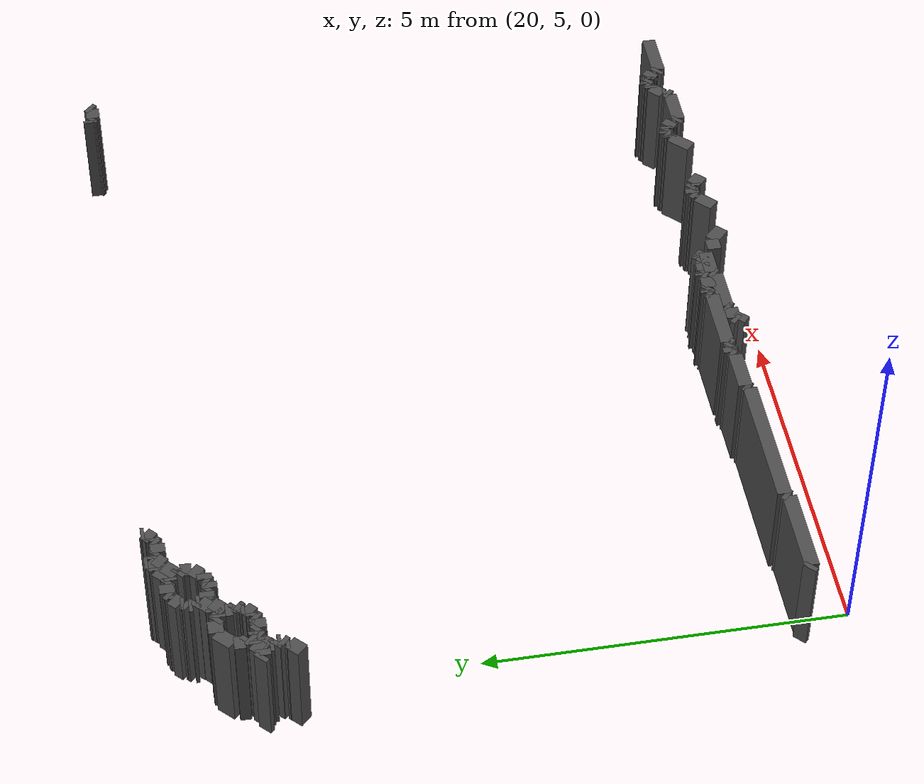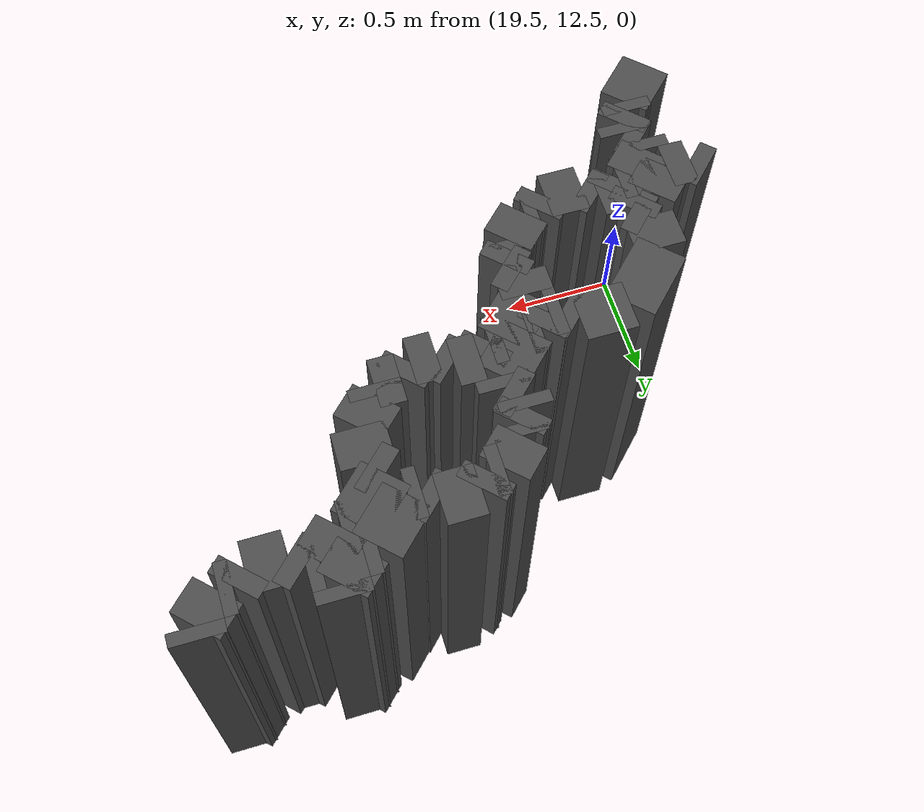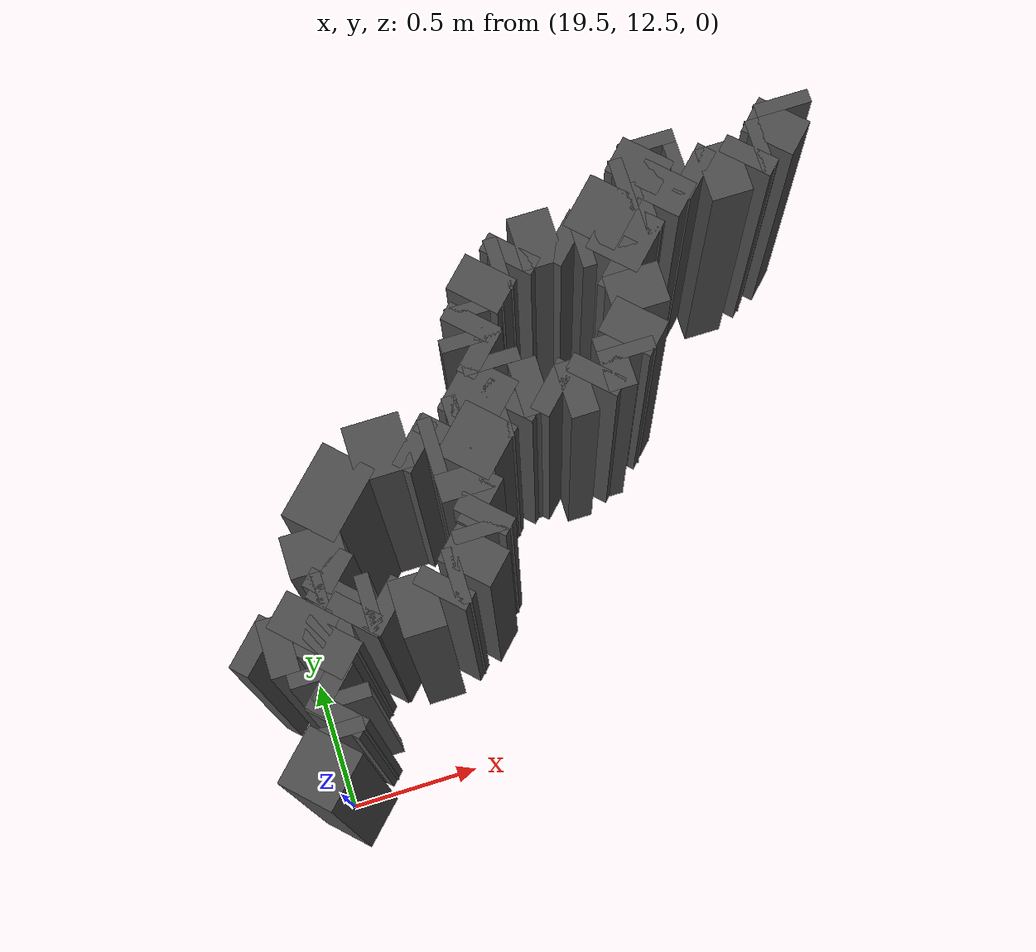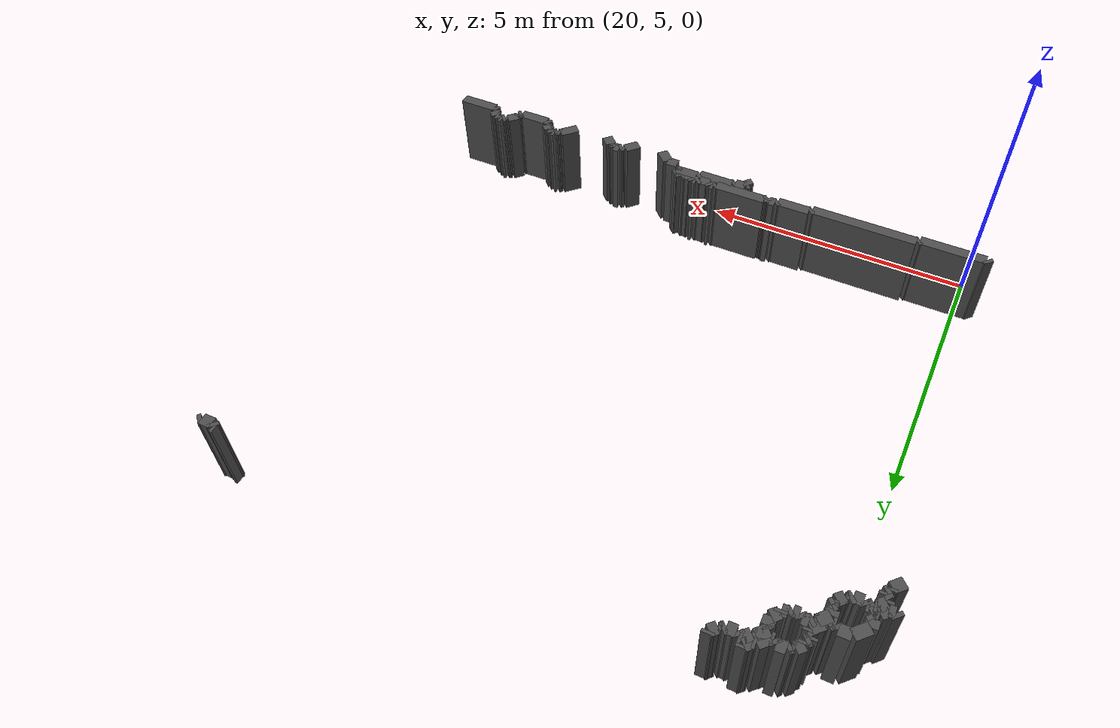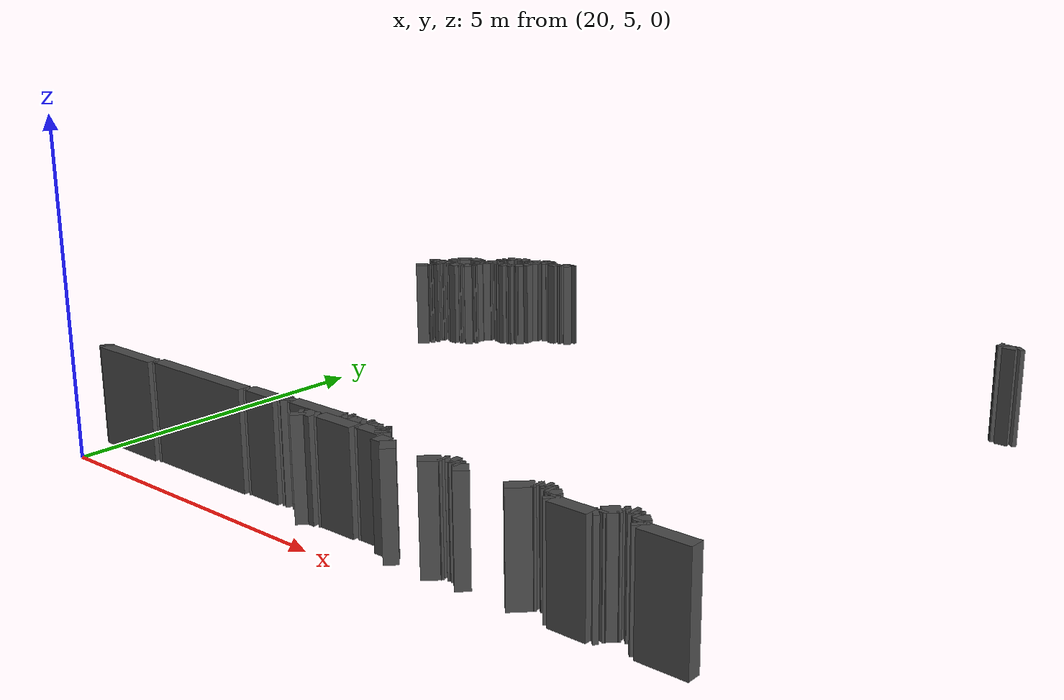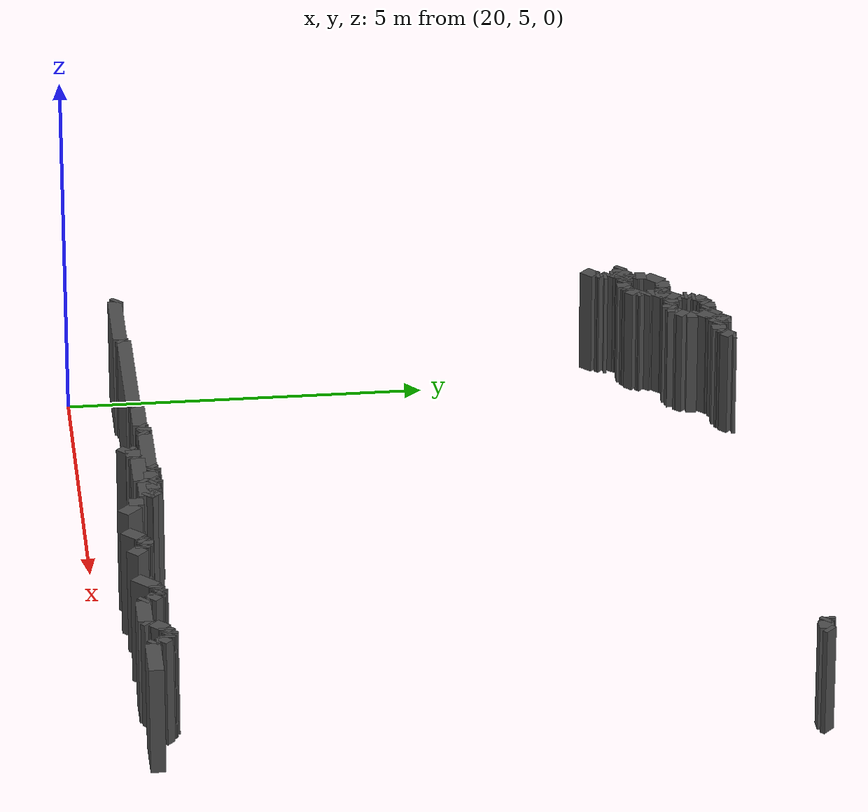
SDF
<sdf version="1.9">
 <model name="generated_walls">
  <static>true</static>
  <link name="wall_161_1274">
   <pose>19.725 5.725 0.75 0 0 -0.785</pose>
   <collision name="collision"><geometry><box><size>0.071 0.2 1.5</size></box></geometry></collision>
   <visual name="visual">
    <geometry><box><size>0.071 0.2 1.5</size></box></geometry>
    <material><ambient>0.3 0.3 0.3 1</ambient></material>
   </visual>
  </link>
  <link name="wall_161_1275">
   <pose>20.350 5.700 0.75 0 0 0.000</pose>
   <collision name="collision"><geometry><box><size>1.200 0.2 1.5</size></box></geometry></collision>
   <visual name="visual">
    <geometry><box><size>1.200 0.2 1.5</size></box></geometry>
    <material><ambient>0.3 0.3 0.3 1</ambient></material>
   </visual>
  </link>
  <link name="wall_161_1276">
   <pose>20.975 5.725 0.75 0 0 0.785</pose>
   <collision name="collision"><geometry><box><size>0.071 0.2 1.5</size></box></geometry></collision>
   <visual name="visual">
    <geometry><box><size>0.071 0.2 1.5</size></box></geometry>
    <material><ambient>0.3 0.3 0.3 1</ambient></material>
   </visual>
  </link>
  <link name="wall_161_1277">
   <pose>21.975 5.750 0.75 0 0 0.000</pose>
   <collision name="collision"><geometry><box><size>1.950 0.2 1.5</size></box></geometry></collision>
   <visual name="visual">
    <geometry><box><size>1.950 0.2 1.5</size></box></geometry>
    <material><ambient>0.3 0.3 0.3 1</ambient></material>
   </visual>
  </link>
  <link name="wall_161_1278">
   <pose>22.975 5.775 0.75 0 0 0.785</pose>
   <collision name="collision"><geometry><box><size>0.071 0.2 1.5</size></box></geometry></collision>
   <visual name="visual">
    <geometry><box><size>0.071 0.2 1.5</size></box></geometry>
    <material><ambient>0.3 0.3 0.3 1</ambient></material>
   </visual>
  </link>
  <link name="wall_161_1279">
   <pose>23.300 5.800 0.75 0 0 0.000</pose>
   <collision name="collision"><geometry><box><size>0.600 0.2 1.5</size></box></geometry></collision>
   <visual name="visual">
    <geometry><box><size>0.600 0.2 1.5</size></box></geometry>
    <material><ambient>0.3 0.3 0.3 1</ambient></material>
   </visual>
  </link>
  <link name="wall_161_1280">
   <pose>23.625 5.825 0.75 0 0 0.785</pose>
   <collision name="collision"><geometry><box><size>0.071 0.2 1.5</size></box></geometry></collision>
   <visual name="visual">
    <geometry><box><size>0.071 0.2 1.5</size></box></geometry>
    <material><ambient>0.3 0.3 0.3 1</ambient></material>
   </visual>
  </link>
  <link name="wall_161_1281">
   <pose>23.700 5.850 0.75 0 0 0.000</pose>
   <collision name="collision"><geometry><box><size>0.100 0.2 1.5</size></box></geometry></collision>
   <visual name="visual">
    <geometry><box><size>0.100 0.2 1.5</size></box></geometry>
    <material><ambient>0.3 0.3 0.3 1</ambient></material>
   </visual>
  </link>
  <link name="wall_161_1282">
   <pose>23.775 5.825 0.75 0 0 -0.785</pose>
   <collision name="collision"><geometry><box><size>0.071 0.2 1.5</size></box></geometry></collision>
   <visual name="visual">
    <geometry><box><size>0.071 0.2 1.5</size></box></geometry>
    <material><ambient>0.3 0.3 0.3 1</ambient></material>
   </visual>
  </link>
  <link name="wall_161_1283">
   <pose>23.825 5.825 0.75 0 0 0.785</pose>
   <collision name="collision"><geometry><box><size>0.071 0.2 1.5</size></box></geometry></collision>
   <visual name="visual">
    <geometry><box><size>0.071 0.2 1.5</size></box></geometry>
    <material><ambient>0.3 0.3 0.3 1</ambient></material>
   </visual>
  </link>
  <link name="wall_161_1284">
   <pose>24.325 5.850 0.75 0 0 0.000</pose>
   <collision name="collision"><geometry><box><size>0.950 0.2 1.5</size></box></geometry></collision>
   <visual name="visual">
    <geometry><box><size>0.950 0.2 1.5</size></box></geometry>
    <material><ambient>0.3 0.3 0.3 1</ambient></material>
   </visual>
  </link>
  <link name="wall_161_1285">
   <pose>24.825 5.875 0.75 0 0 0.785</pose>
   <collision name="collision"><geometry><box><size>0.071 0.2 1.5</size></box></geometry></collision>
   <visual name="visual">
    <geometry><box><size>0.071 0.2 1.5</size></box></geometry>
    <material><ambient>0.3 0.3 0.3 1</ambient></material>
   </visual>
  </link>
  <link name="wall_161_1286">
   <pose>24.875 5.900 0.75 0 0 0.000</pose>
   <collision name="collision"><geometry><box><size>0.050 0.2 1.5</size></box></geometry></collision>
   <visual name="visual">
    <geometry><box><size>0.050 0.2 1.5</size></box></geometry>
    <material><ambient>0.3 0.3 0.3 1</ambient></material>
   </visual>
  </link>
  <link name="wall_161_1287">
   <pose>24.925 5.875 0.75 0 0 -0.785</pose>
   <collision name="collision"><geometry><box><size>0.071 0.2 1.5</size></box></geometry></collision>
   <visual name="visual">
    <geometry><box><size>0.071 0.2 1.5</size></box></geometry>
    <material><ambient>0.3 0.3 0.3 1</ambient></material>
   </visual>
  </link>
  <link name="wall_161_1288">
   <pose>25.050 5.850 0.75 0 0 0.000</pose>
   <collision name="collision"><geometry><box><size>0.200 0.2 1.5</size></box></geometry></collision>
   <visual name="visual">
    <geometry><box><size>0.200 0.2 1.5</size></box></geometry>
    <material><ambient>0.3 0.3 0.3 1</ambient></material>
   </visual>
  </link>
  <link name="wall_161_1289">
   <pose>25.175 5.875 0.75 0 0 0.785</pose>
   <collision name="collision"><geometry><box><size>0.071 0.2 1.5</size></box></geometry></collision>
   <visual name="visual">
    <geometry><box><size>0.071 0.2 1.5</size></box></geometry>
    <material><ambient>0.3 0.3 0.3 1</ambient></material>
   </visual>
  </link>
  <link name="wall_161_1290">
   <pose>25.225 5.900 0.75 0 0 0.000</pose>
   <collision name="collision"><geometry><box><size>0.050 0.2 1.5</size></box></geometry></collision>
   <visual name="visual">
    <geometry><box><size>0.050 0.2 1.5</size></box></geometry>
    <material><ambient>0.3 0.3 0.3 1</ambient></material>
   </visual>
  </link>
  <link name="wall_161_1291">
   <pose>25.275 5.875 0.75 0 0 -0.785</pose>
   <collision name="collision"><geometry><box><size>0.071 0.2 1.5</size></box></geometry></collision>
   <visual name="visual">
    <geometry><box><size>0.071 0.2 1.5</size></box></geometry>
    <material><ambient>0.3 0.3 0.3 1</ambient></material>
   </visual>
  </link>
  <link name="wall_161_1292">
   <pose>25.375 5.850 0.75 0 0 0.000</pose>
   <collision name="collision"><geometry><box><size>0.150 0.2 1.5</size></box></geometry></collision>
   <visual name="visual">
    <geometry><box><size>0.150 0.2 1.5</size></box></geometry>
    <material><ambient>0.3 0.3 0.3 1</ambient></material>
   </visual>
  </link>
  <link name="wall_161_1293">
   <pose>25.475 5.875 0.75 0 0 0.785</pose>
   <collision name="collision"><geometry><box><size>0.071 0.2 1.5</size></box></geometry></collision>
   <visual name="visual">
    <geometry><box><size>0.071 0.2 1.5</size></box></geometry>
    <material><ambient>0.3 0.3 0.3 1</ambient></material>
   </visual>
  </link>
  <link name="wall_161_1294">
   <pose>25.525 5.875 0.75 0 0 -0.785</pose>
   <collision name="collision"><geometry><box><size>0.071 0.2 1.5</size></box></geometry></collision>
   <visual name="visual">
    <geometry><box><size>0.071 0.2 1.5</size></box></geometry>
    <material><ambient>0.3 0.3 0.3 1</ambient></material>
   </visual>
  </link>
  <link name="wall_161_1295">
   <pose>25.575 5.850 0.75 0 0 0.000</pose>
   <collision name="collision"><geometry><box><size>0.050 0.2 1.5</size></box></geometry></collision>
   <visual name="visual">
    <geometry><box><size>0.050 0.2 1.5</size></box></geometry>
    <material><ambient>0.3 0.3 0.3 1</ambient></material>
   </visual>
  </link>
  <link name="wall_161_1296">
   <pose>25.625 5.875 0.75 0 0 0.785</pose>
   <collision name="collision"><geometry><box><size>0.071 0.2 1.5</size></box></geometry></collision>
   <visual name="visual">
    <geometry><box><size>0.071 0.2 1.5</size></box></geometry>
    <material><ambient>0.3 0.3 0.3 1</ambient></material>
   </visual>
  </link>
  <link name="wall_161_1297">
   <pose>25.625 5.875 0.75 0 0 -2.356</pose>
   <collision name="collision"><geometry><box><size>0.071 0.2 1.5</size></box></geometry></collision>
   <visual name="visual">
    <geometry><box><size>0.071 0.2 1.5</size></box></geometry>
    <material><ambient>0.3 0.3 0.3 1</ambient></material>
   </visual>
  </link>
  <link name="wall_161_1298">
   <pose>25.600 5.825 0.75 0 0 -1.571</pose>
   <collision name="collision"><geometry><box><size>0.050 0.2 1.5</size></box></geometry></collision>
   <visual name="visual">
    <geometry><box><size>0.050 0.2 1.5</size></box></geometry>
    <material><ambient>0.3 0.3 0.3 1</ambient></material>
   </visual>
  </link>
  <link name="wall_161_1299">
   <pose>25.625 5.775 0.75 0 0 -0.785</pose>
   <collision name="collision"><geometry><box><size>0.071 0.2 1.5</size></box></geometry></collision>
   <visual name="visual">
    <geometry><box><size>0.071 0.2 1.5</size></box></geometry>
    <material><ambient>0.3 0.3 0.3 1</ambient></material>
   </visual>
  </link>
  <link name="wall_161_1300">
   <pose>25.450 5.750 0.75 0 0 3.142</pose>
   <collision name="collision"><geometry><box><size>0.400 0.2 1.5</size></box></geometry></collision>
   <visual name="visual">
    <geometry><box><size>0.400 0.2 1.5</size></box></geometry>
    <material><ambient>0.3 0.3 0.3 1</ambient></material>
   </visual>
  </link>
  <link name="wall_161_1301">
   <pose>25.225 5.725 0.75 0 0 -2.356</pose>
   <collision name="collision"><geometry><box><size>0.071 0.2 1.5</size></box></geometry></collision>
   <visual name="visual">
    <geometry><box><size>0.071 0.2 1.5</size></box></geometry>
    <material><ambient>0.3 0.3 0.3 1</ambient></material>
   </visual>
  </link>
  <link name="wall_161_1302">
   <pose>24.875 5.700 0.75 0 0 3.142</pose>
   <collision name="collision"><geometry><box><size>0.650 0.2 1.5</size></box></geometry></collision>
   <visual name="visual">
    <geometry><box><size>0.650 0.2 1.5</size></box></geometry>
    <material><ambient>0.3 0.3 0.3 1</ambient></material>
   </visual>
  </link>
  <link name="wall_161_1303">
   <pose>24.525 5.675 0.75 0 0 -2.356</pose>
   <collision name="collision"><geometry><box><size>0.071 0.2 1.5</size></box></geometry></collision>
   <visual name="visual">
    <geometry><box><size>0.071 0.2 1.5</size></box></geometry>
    <material><ambient>0.3 0.3 0.3 1</ambient></material>
   </visual>
  </link>
  <link name="wall_161_1304">
   <pose>24.400 5.650 0.75 0 0 3.142</pose>
   <collision name="collision"><geometry><box><size>0.200 0.2 1.5</size></box></geometry></collision>
   <visual name="visual">
    <geometry><box><size>0.200 0.2 1.5</size></box></geometry>
    <material><ambient>0.3 0.3 0.3 1</ambient></material>
   </visual>
  </link>
  <link name="wall_161_1305">
   <pose>24.275 5.625 0.75 0 0 -2.356</pose>
   <collision name="collision"><geometry><box><size>0.071 0.2 1.5</size></box></geometry></collision>
   <visual name="visual">
    <geometry><box><size>0.071 0.2 1.5</size></box></geometry>
    <material><ambient>0.3 0.3 0.3 1</ambient></material>
   </visual>
  </link>
  <link name="wall_161_1306">
   <pose>24.300 5.550 0.75 0 0 -0.785</pose>
   <collision name="collision"><geometry><box><size>0.141 0.2 1.5</size></box></geometry></collision>
   <visual name="visual">
    <geometry><box><size>0.141 0.2 1.5</size></box></geometry>
    <material><ambient>0.3 0.3 0.3 1</ambient></material>
   </visual>
  </link>
  <link name="wall_161_1311">
   <pose>25.800 5.600 0.75 0 0 0.000</pose>
   <collision name="collision"><geometry><box><size>0.200 0.2 1.5</size></box></geometry></collision>
   <visual name="visual">
    <geometry><box><size>0.200 0.2 1.5</size></box></geometry>
    <material><ambient>0.3 0.3 0.3 1</ambient></material>
   </visual>
  </link>
  <link name="wall_161_1312">
   <pose>26.000 5.500 0.75 0 0 -0.785</pose>
   <collision name="collision"><geometry><box><size>0.283 0.2 1.5</size></box></geometry></collision>
   <visual name="visual">
    <geometry><box><size>0.283 0.2 1.5</size></box></geometry>
    <material><ambient>0.3 0.3 0.3 1</ambient></material>
   </visual>
  </link>
  <link name="wall_161_1314">
   <pose>26.700 5.500 0.75 0 0 0.785</pose>
   <collision name="collision"><geometry><box><size>0.283 0.2 1.5</size></box></geometry></collision>
   <visual name="visual">
    <geometry><box><size>0.283 0.2 1.5</size></box></geometry>
    <material><ambient>0.3 0.3 0.3 1</ambient></material>
   </visual>
  </link>
  <link name="wall_161_1315">
   <pose>26.825 5.600 0.75 0 0 0.000</pose>
   <collision name="collision"><geometry><box><size>0.050 0.2 1.5</size></box></geometry></collision>
   <visual name="visual">
    <geometry><box><size>0.050 0.2 1.5</size></box></geometry>
    <material><ambient>0.3 0.3 0.3 1</ambient></material>
   </visual>
  </link>
  <link name="wall_161_1316">
   <pose>26.875 5.625 0.75 0 0 0.785</pose>
   <collision name="collision"><geometry><box><size>0.071 0.2 1.5</size></box></geometry></collision>
   <visual name="visual">
    <geometry><box><size>0.071 0.2 1.5</size></box></geometry>
    <material><ambient>0.3 0.3 0.3 1</ambient></material>
   </visual>
  </link>
  <link name="wall_161_1317">
   <pose>26.950 5.650 0.75 0 0 0.000</pose>
   <collision name="collision"><geometry><box><size>0.100 0.2 1.5</size></box></geometry></collision>
   <visual name="visual">
    <geometry><box><size>0.100 0.2 1.5</size></box></geometry>
    <material><ambient>0.3 0.3 0.3 1</ambient></material>
   </visual>
  </link>
  <link name="wall_161_1318">
   <pose>27.025 5.625 0.75 0 0 -0.785</pose>
   <collision name="collision"><geometry><box><size>0.071 0.2 1.5</size></box></geometry></collision>
   <visual name="visual">
    <geometry><box><size>0.071 0.2 1.5</size></box></geometry>
    <material><ambient>0.3 0.3 0.3 1</ambient></material>
   </visual>
  </link>
  <link name="wall_161_1319">
   <pose>27.075 5.600 0.75 0 0 0.000</pose>
   <collision name="collision"><geometry><box><size>0.050 0.2 1.5</size></box></geometry></collision>
   <visual name="visual">
    <geometry><box><size>0.050 0.2 1.5</size></box></geometry>
    <material><ambient>0.3 0.3 0.3 1</ambient></material>
   </visual>
  </link>
  <link name="wall_161_1320">
   <pose>27.175 5.525 0.75 0 0 -0.785</pose>
   <collision name="collision"><geometry><box><size>0.212 0.2 1.5</size></box></geometry></collision>
   <visual name="visual">
    <geometry><box><size>0.212 0.2 1.5</size></box></geometry>
    <material><ambient>0.3 0.3 0.3 1</ambient></material>
   </visual>
  </link>
  <link name="wall_161_1324">
   <pose>28.025 5.575 0.75 0 0 0.785</pose>
   <collision name="collision"><geometry><box><size>0.354 0.2 1.5</size></box></geometry></collision>
   <visual name="visual">
    <geometry><box><size>0.354 0.2 1.5</size></box></geometry>
    <material><ambient>0.3 0.3 0.3 1</ambient></material>
   </visual>
  </link>
  <link name="wall_161_1325">
   <pose>28.175 5.700 0.75 0 0 0.000</pose>
   <collision name="collision"><geometry><box><size>0.050 0.2 1.5</size></box></geometry></collision>
   <visual name="visual">
    <geometry><box><size>0.050 0.2 1.5</size></box></geometry>
    <material><ambient>0.3 0.3 0.3 1</ambient></material>
   </visual>
  </link>
  <link name="wall_161_1326">
   <pose>28.225 5.725 0.75 0 0 0.785</pose>
   <collision name="collision"><geometry><box><size>0.071 0.2 1.5</size></box></geometry></collision>
   <visual name="visual">
    <geometry><box><size>0.071 0.2 1.5</size></box></geometry>
    <material><ambient>0.3 0.3 0.3 1</ambient></material>
   </visual>
  </link>
  <link name="wall_161_1327">
   <pose>28.275 5.750 0.75 0 0 0.000</pose>
   <collision name="collision"><geometry><box><size>0.050 0.2 1.5</size></box></geometry></collision>
   <visual name="visual">
    <geometry><box><size>0.050 0.2 1.5</size></box></geometry>
    <material><ambient>0.3 0.3 0.3 1</ambient></material>
   </visual>
  </link>
  <link name="wall_161_1328">
   <pose>28.325 5.725 0.75 0 0 -0.785</pose>
   <collision name="collision"><geometry><box><size>0.071 0.2 1.5</size></box></geometry></collision>
   <visual name="visual">
    <geometry><box><size>0.071 0.2 1.5</size></box></geometry>
    <material><ambient>0.3 0.3 0.3 1</ambient></material>
   </visual>
  </link>
  <link name="wall_161_1329">
   <pose>28.375 5.700 0.75 0 0 0.000</pose>
   <collision name="collision"><geometry><box><size>0.050 0.2 1.5</size></box></geometry></collision>
   <visual name="visual">
    <geometry><box><size>0.050 0.2 1.5</size></box></geometry>
    <material><ambient>0.3 0.3 0.3 1</ambient></material>
   </visual>
  </link>
  <link name="wall_161_1330">
   <pose>28.450 5.650 0.75 0 0 -0.785</pose>
   <collision name="collision"><geometry><box><size>0.141 0.2 1.5</size></box></geometry></collision>
   <visual name="visual">
    <geometry><box><size>0.141 0.2 1.5</size></box></geometry>
    <material><ambient>0.3 0.3 0.3 1</ambient></material>
   </visual>
  </link>
  <link name="wall_161_1331">
   <pose>28.500 5.575 0.75 0 0 -1.571</pose>
   <collision name="collision"><geometry><box><size>0.050 0.2 1.5</size></box></geometry></collision>
   <visual name="visual">
    <geometry><box><size>0.050 0.2 1.5</size></box></geometry>
    <material><ambient>0.3 0.3 0.3 1</ambient></material>
   </visual>
  </link>
  <link name="wall_161_1332">
   <pose>28.525 5.525 0.75 0 0 -0.785</pose>
   <collision name="collision"><geometry><box><size>0.071 0.2 1.5</size></box></geometry></collision>
   <visual name="visual">
    <geometry><box><size>0.071 0.2 1.5</size></box></geometry>
    <material><ambient>0.3 0.3 0.3 1</ambient></material>
   </visual>
  </link>
  <link name="wall_161_1333">
   <pose>28.825 5.500 0.75 0 0 0.000</pose>
   <collision name="collision"><geometry><box><size>0.550 0.2 1.5</size></box></geometry></collision>
   <visual name="visual">
    <geometry><box><size>0.550 0.2 1.5</size></box></geometry>
    <material><ambient>0.3 0.3 0.3 1</ambient></material>
   </visual>
  </link>
  <link name="wall_161_1334">
   <pose>29.125 5.525 0.75 0 0 0.785</pose>
   <collision name="collision"><geometry><box><size>0.071 0.2 1.5</size></box></geometry></collision>
   <visual name="visual">
    <geometry><box><size>0.071 0.2 1.5</size></box></geometry>
    <material><ambient>0.3 0.3 0.3 1</ambient></material>
   </visual>
  </link>
  <link name="wall_161_1335">
   <pose>29.150 5.575 0.75 0 0 1.571</pose>
   <collision name="collision"><geometry><box><size>0.050 0.2 1.5</size></box></geometry></collision>
   <visual name="visual">
    <geometry><box><size>0.050 0.2 1.5</size></box></geometry>
    <material><ambient>0.3 0.3 0.3 1</ambient></material>
   </visual>
  </link>
  <link name="wall_161_1336">
   <pose>29.225 5.675 0.75 0 0 0.785</pose>
   <collision name="collision"><geometry><box><size>0.212 0.2 1.5</size></box></geometry></collision>
   <visual name="visual">
    <geometry><box><size>0.212 0.2 1.5</size></box></geometry>
    <material><ambient>0.3 0.3 0.3 1</ambient></material>
   </visual>
  </link>
  <link name="wall_161_1337">
   <pose>29.325 5.750 0.75 0 0 0.000</pose>
   <collision name="collision"><geometry><box><size>0.050 0.2 1.5</size></box></geometry></collision>
   <visual name="visual">
    <geometry><box><size>0.050 0.2 1.5</size></box></geometry>
    <material><ambient>0.3 0.3 0.3 1</ambient></material>
   </visual>
  </link>
  <link name="wall_161_1338">
   <pose>29.375 5.775 0.75 0 0 0.785</pose>
   <collision name="collision"><geometry><box><size>0.071 0.2 1.5</size></box></geometry></collision>
   <visual name="visual">
    <geometry><box><size>0.071 0.2 1.5</size></box></geometry>
    <material><ambient>0.3 0.3 0.3 1</ambient></material>
   </visual>
  </link>
  <link name="wall_161_1339">
   <pose>29.425 5.800 0.75 0 0 0.000</pose>
   <collision name="collision"><geometry><box><size>0.050 0.2 1.5</size></box></geometry></collision>
   <visual name="visual">
    <geometry><box><size>0.050 0.2 1.5</size></box></geometry>
    <material><ambient>0.3 0.3 0.3 1</ambient></material>
   </visual>
  </link>
  <link name="wall_161_1340">
   <pose>29.475 5.775 0.75 0 0 -0.785</pose>
   <collision name="collision"><geometry><box><size>0.071 0.2 1.5</size></box></geometry></collision>
   <visual name="visual">
    <geometry><box><size>0.071 0.2 1.5</size></box></geometry>
    <material><ambient>0.3 0.3 0.3 1</ambient></material>
   </visual>
  </link>
  <link name="wall_161_1341">
   <pose>29.525 5.750 0.75 0 0 0.000</pose>
   <collision name="collision"><geometry><box><size>0.050 0.2 1.5</size></box></geometry></collision>
   <visual name="visual">
    <geometry><box><size>0.050 0.2 1.5</size></box></geometry>
    <material><ambient>0.3 0.3 0.3 1</ambient></material>
   </visual>
  </link>
  <link name="wall_161_1342">
   <pose>29.600 5.700 0.75 0 0 -0.785</pose>
   <collision name="collision"><geometry><box><size>0.141 0.2 1.5</size></box></geometry></collision>
   <visual name="visual">
    <geometry><box><size>0.141 0.2 1.5</size></box></geometry>
    <material><ambient>0.3 0.3 0.3 1</ambient></material>
   </visual>
  </link>
  <link name="wall_161_1343">
   <pose>29.650 5.625 0.75 0 0 -1.571</pose>
   <collision name="collision"><geometry><box><size>0.050 0.2 1.5</size></box></geometry></collision>
   <visual name="visual">
    <geometry><box><size>0.050 0.2 1.5</size></box></geometry>
    <material><ambient>0.3 0.3 0.3 1</ambient></material>
   </visual>
  </link>
  <link name="wall_161_1344">
   <pose>29.675 5.575 0.75 0 0 -0.785</pose>
   <collision name="collision"><geometry><box><size>0.071 0.2 1.5</size></box></geometry></collision>
   <visual name="visual">
    <geometry><box><size>0.071 0.2 1.5</size></box></geometry>
    <material><ambient>0.3 0.3 0.3 1</ambient></material>
   </visual>
  </link>
  <link name="wall_161_1345">
   <pose>30.050 5.550 0.75 0 0 0.000</pose>
   <collision name="collision"><geometry><box><size>0.700 0.2 1.5</size></box></geometry></collision>
   <visual name="visual">
    <geometry><box><size>0.700 0.2 1.5</size></box></geometry>
    <material><ambient>0.3 0.3 0.3 1</ambient></material>
   </visual>
  </link>
  <link name="wall_161_1482">
   <pose>30.225 14.225 0.75 0 0 -2.356</pose>
   <collision name="collision"><geometry><box><size>0.071 0.2 1.5</size></box></geometry></collision>
   <visual name="visual">
    <geometry><box><size>0.071 0.2 1.5</size></box></geometry>
    <material><ambient>0.3 0.3 0.3 1</ambient></material>
   </visual>
  </link>
  <link name="wall_161_1483">
   <pose>30.100 14.200 0.75 0 0 3.142</pose>
   <collision name="collision"><geometry><box><size>0.200 0.2 1.5</size></box></geometry></collision>
   <visual name="visual">
    <geometry><box><size>0.200 0.2 1.5</size></box></geometry>
    <material><ambient>0.3 0.3 0.3 1</ambient></material>
   </visual>
  </link>
  <link name="wall_161_1484">
   <pose>29.975 14.225 0.75 0 0 2.356</pose>
   <collision name="collision"><geometry><box><size>0.071 0.2 1.5</size></box></geometry></collision>
   <visual name="visual">
    <geometry><box><size>0.071 0.2 1.5</size></box></geometry>
    <material><ambient>0.3 0.3 0.3 1</ambient></material>
   </visual>
  </link>
  <link name="wall_161_1485">
   <pose>29.925 14.250 0.75 0 0 3.142</pose>
   <collision name="collision"><geometry><box><size>0.050 0.2 1.5</size></box></geometry></collision>
   <visual name="visual">
    <geometry><box><size>0.050 0.2 1.5</size></box></geometry>
    <material><ambient>0.3 0.3 0.3 1</ambient></material>
   </visual>
  </link>
  <link name="wall_161_1595">
   <pose>21.700 14.225 0.75 0 0 -1.571</pose>
   <collision name="collision"><geometry><box><size>0.050 0.2 1.5</size></box></geometry></collision>
   <visual name="visual">
    <geometry><box><size>0.050 0.2 1.5</size></box></geometry>
    <material><ambient>0.3 0.3 0.3 1</ambient></material>
   </visual>
  </link>
  <link name="wall_161_1596">
   <pose>21.650 14.150 0.75 0 0 -2.356</pose>
   <collision name="collision"><geometry><box><size>0.141 0.2 1.5</size></box></geometry></collision>
   <visual name="visual">
    <geometry><box><size>0.141 0.2 1.5</size></box></geometry>
    <material><ambient>0.3 0.3 0.3 1</ambient></material>
   </visual>
  </link>
  <link name="wall_161_1597">
   <pose>21.575 14.100 0.75 0 0 3.142</pose>
   <collision name="collision"><geometry><box><size>0.050 0.2 1.5</size></box></geometry></collision>
   <visual name="visual">
    <geometry><box><size>0.050 0.2 1.5</size></box></geometry>
    <material><ambient>0.3 0.3 0.3 1</ambient></material>
   </visual>
  </link>
  <link name="wall_161_1598">
   <pose>21.525 14.075 0.75 0 0 -2.356</pose>
   <collision name="collision"><geometry><box><size>0.071 0.2 1.5</size></box></geometry></collision>
   <visual name="visual">
    <geometry><box><size>0.071 0.2 1.5</size></box></geometry>
    <material><ambient>0.3 0.3 0.3 1</ambient></material>
   </visual>
  </link>
  <link name="wall_161_1599">
   <pose>21.425 14.050 0.75 0 0 3.142</pose>
   <collision name="collision"><geometry><box><size>0.150 0.2 1.5</size></box></geometry></collision>
   <visual name="visual">
    <geometry><box><size>0.150 0.2 1.5</size></box></geometry>
    <material><ambient>0.3 0.3 0.3 1</ambient></material>
   </visual>
  </link>
  <link name="wall_161_1600">
   <pose>21.325 14.075 0.75 0 0 2.356</pose>
   <collision name="collision"><geometry><box><size>0.071 0.2 1.5</size></box></geometry></collision>
   <visual name="visual">
    <geometry><box><size>0.071 0.2 1.5</size></box></geometry>
    <material><ambient>0.3 0.3 0.3 1</ambient></material>
   </visual>
  </link>
  <link name="wall_161_1601">
   <pose>21.275 14.100 0.75 0 0 3.142</pose>
   <collision name="collision"><geometry><box><size>0.050 0.2 1.5</size></box></geometry></collision>
   <visual name="visual">
    <geometry><box><size>0.050 0.2 1.5</size></box></geometry>
    <material><ambient>0.3 0.3 0.3 1</ambient></material>
   </visual>
  </link>
  <link name="wall_161_1602">
   <pose>21.200 14.050 0.75 0 0 -2.356</pose>
   <collision name="collision"><geometry><box><size>0.141 0.2 1.5</size></box></geometry></collision>
   <visual name="visual">
    <geometry><box><size>0.141 0.2 1.5</size></box></geometry>
    <material><ambient>0.3 0.3 0.3 1</ambient></material>
   </visual>
  </link>
  <link name="wall_161_1603">
   <pose>21.125 14.000 0.75 0 0 3.142</pose>
   <collision name="collision"><geometry><box><size>0.050 0.2 1.5</size></box></geometry></collision>
   <visual name="visual">
    <geometry><box><size>0.050 0.2 1.5</size></box></geometry>
    <material><ambient>0.3 0.3 0.3 1</ambient></material>
   </visual>
  </link>
  <link name="wall_161_1604">
   <pose>21.025 13.925 0.75 0 0 -2.356</pose>
   <collision name="collision"><geometry><box><size>0.212 0.2 1.5</size></box></geometry></collision>
   <visual name="visual">
    <geometry><box><size>0.212 0.2 1.5</size></box></geometry>
    <material><ambient>0.3 0.3 0.3 1</ambient></material>
   </visual>
  </link>
  <link name="wall_161_1605">
   <pose>20.975 13.825 0.75 0 0 -0.785</pose>
   <collision name="collision"><geometry><box><size>0.071 0.2 1.5</size></box></geometry></collision>
   <visual name="visual">
    <geometry><box><size>0.071 0.2 1.5</size></box></geometry>
    <material><ambient>0.3 0.3 0.3 1</ambient></material>
   </visual>
  </link>
  <link name="wall_161_1606">
   <pose>21.000 13.725 0.75 0 0 -1.571</pose>
   <collision name="collision"><geometry><box><size>0.150 0.2 1.5</size></box></geometry></collision>
   <visual name="visual">
    <geometry><box><size>0.150 0.2 1.5</size></box></geometry>
    <material><ambient>0.3 0.3 0.3 1</ambient></material>
   </visual>
  </link>
  <link name="wall_161_1607">
   <pose>20.950 13.600 0.75 0 0 -2.356</pose>
   <collision name="collision"><geometry><box><size>0.141 0.2 1.5</size></box></geometry></collision>
   <visual name="visual">
    <geometry><box><size>0.141 0.2 1.5</size></box></geometry>
    <material><ambient>0.3 0.3 0.3 1</ambient></material>
   </visual>
  </link>
  <link name="wall_161_1608">
   <pose>20.900 13.525 0.75 0 0 -1.571</pose>
   <collision name="collision"><geometry><box><size>0.050 0.2 1.5</size></box></geometry></collision>
   <visual name="visual">
    <geometry><box><size>0.050 0.2 1.5</size></box></geometry>
    <material><ambient>0.3 0.3 0.3 1</ambient></material>
   </visual>
  </link>
  <link name="wall_161_1609">
   <pose>20.850 13.500 0.75 0 0 3.142</pose>
   <collision name="collision"><geometry><box><size>0.100 0.2 1.5</size></box></geometry></collision>
   <visual name="visual">
    <geometry><box><size>0.100 0.2 1.5</size></box></geometry>
    <material><ambient>0.3 0.3 0.3 1</ambient></material>
   </visual>
  </link>
  <link name="wall_161_1610">
   <pose>20.775 13.475 0.75 0 0 -2.356</pose>
   <collision name="collision"><geometry><box><size>0.071 0.2 1.5</size></box></geometry></collision>
   <visual name="visual">
    <geometry><box><size>0.071 0.2 1.5</size></box></geometry>
    <material><ambient>0.3 0.3 0.3 1</ambient></material>
   </visual>
  </link>
  <link name="wall_161_1611">
   <pose>20.700 13.450 0.75 0 0 3.142</pose>
   <collision name="collision"><geometry><box><size>0.100 0.2 1.5</size></box></geometry></collision>
   <visual name="visual">
    <geometry><box><size>0.100 0.2 1.5</size></box></geometry>
    <material><ambient>0.3 0.3 0.3 1</ambient></material>
   </visual>
  </link>
  <link name="wall_161_1612">
   <pose>20.625 13.475 0.75 0 0 2.356</pose>
   <collision name="collision"><geometry><box><size>0.071 0.2 1.5</size></box></geometry></collision>
   <visual name="visual">
    <geometry><box><size>0.071 0.2 1.5</size></box></geometry>
    <material><ambient>0.3 0.3 0.3 1</ambient></material>
   </visual>
  </link>
  <link name="wall_161_1613">
   <pose>20.550 13.500 0.75 0 0 3.142</pose>
   <collision name="collision"><geometry><box><size>0.100 0.2 1.5</size></box></geometry></collision>
   <visual name="visual">
    <geometry><box><size>0.100 0.2 1.5</size></box></geometry>
    <material><ambient>0.3 0.3 0.3 1</ambient></material>
   </visual>
  </link>
  <link name="wall_161_1614">
   <pose>20.475 13.475 0.75 0 0 -2.356</pose>
   <collision name="collision"><geometry><box><size>0.071 0.2 1.5</size></box></geometry></collision>
   <visual name="visual">
    <geometry><box><size>0.071 0.2 1.5</size></box></geometry>
    <material><ambient>0.3 0.3 0.3 1</ambient></material>
   </visual>
  </link>
  <link name="wall_161_1615">
   <pose>20.425 13.450 0.75 0 0 3.142</pose>
   <collision name="collision"><geometry><box><size>0.050 0.2 1.5</size></box></geometry></collision>
   <visual name="visual">
    <geometry><box><size>0.050 0.2 1.5</size></box></geometry>
    <material><ambient>0.3 0.3 0.3 1</ambient></material>
   </visual>
  </link>
  <link name="wall_161_1616">
   <pose>20.325 13.375 0.75 0 0 -2.356</pose>
   <collision name="collision"><geometry><box><size>0.212 0.2 1.5</size></box></geometry></collision>
   <visual name="visual">
    <geometry><box><size>0.212 0.2 1.5</size></box></geometry>
    <material><ambient>0.3 0.3 0.3 1</ambient></material>
   </visual>
  </link>
  <link name="wall_161_1617">
   <pose>20.250 13.250 0.75 0 0 -1.571</pose>
   <collision name="collision"><geometry><box><size>0.100 0.2 1.5</size></box></geometry></collision>
   <visual name="visual">
    <geometry><box><size>0.100 0.2 1.5</size></box></geometry>
    <material><ambient>0.3 0.3 0.3 1</ambient></material>
   </visual>
  </link>
  <link name="wall_161_1618">
   <pose>20.275 13.175 0.75 0 0 -0.785</pose>
   <collision name="collision"><geometry><box><size>0.071 0.2 1.5</size></box></geometry></collision>
   <visual name="visual">
    <geometry><box><size>0.071 0.2 1.5</size></box></geometry>
    <material><ambient>0.3 0.3 0.3 1</ambient></material>
   </visual>
  </link>
  <link name="wall_161_1619">
   <pose>20.275 13.125 0.75 0 0 -2.356</pose>
   <collision name="collision"><geometry><box><size>0.071 0.2 1.5</size></box></geometry></collision>
   <visual name="visual">
    <geometry><box><size>0.071 0.2 1.5</size></box></geometry>
    <material><ambient>0.3 0.3 0.3 1</ambient></material>
   </visual>
  </link>
  <link name="wall_161_1620">
   <pose>20.250 13.075 0.75 0 0 -1.571</pose>
   <collision name="collision"><geometry><box><size>0.050 0.2 1.5</size></box></geometry></collision>
   <visual name="visual">
    <geometry><box><size>0.050 0.2 1.5</size></box></geometry>
    <material><ambient>0.3 0.3 0.3 1</ambient></material>
   </visual>
  </link>
  <link name="wall_161_1621">
   <pose>20.200 13.000 0.75 0 0 -2.356</pose>
   <collision name="collision"><geometry><box><size>0.141 0.2 1.5</size></box></geometry></collision>
   <visual name="visual">
    <geometry><box><size>0.141 0.2 1.5</size></box></geometry>
    <material><ambient>0.3 0.3 0.3 1</ambient></material>
   </visual>
  </link>
  <link name="wall_161_1622">
   <pose>20.125 12.950 0.75 0 0 3.142</pose>
   <collision name="collision"><geometry><box><size>0.050 0.2 1.5</size></box></geometry></collision>
   <visual name="visual">
    <geometry><box><size>0.050 0.2 1.5</size></box></geometry>
    <material><ambient>0.3 0.3 0.3 1</ambient></material>
   </visual>
  </link>
  <link name="wall_161_1623">
   <pose>20.075 12.925 0.75 0 0 -2.356</pose>
   <collision name="collision"><geometry><box><size>0.071 0.2 1.5</size></box></geometry></collision>
   <visual name="visual">
    <geometry><box><size>0.071 0.2 1.5</size></box></geometry>
    <material><ambient>0.3 0.3 0.3 1</ambient></material>
   </visual>
  </link>
  <link name="wall_161_1624">
   <pose>19.975 12.900 0.75 0 0 3.142</pose>
   <collision name="collision"><geometry><box><size>0.150 0.2 1.5</size></box></geometry></collision>
   <visual name="visual">
    <geometry><box><size>0.150 0.2 1.5</size></box></geometry>
    <material><ambient>0.3 0.3 0.3 1</ambient></material>
   </visual>
  </link>
  <link name="wall_161_1625">
   <pose>19.875 12.925 0.75 0 0 2.356</pose>
   <collision name="collision"><geometry><box><size>0.071 0.2 1.5</size></box></geometry></collision>
   <visual name="visual">
    <geometry><box><size>0.071 0.2 1.5</size></box></geometry>
    <material><ambient>0.3 0.3 0.3 1</ambient></material>
   </visual>
  </link>
  <link name="wall_161_1626">
   <pose>19.825 12.950 0.75 0 0 3.142</pose>
   <collision name="collision"><geometry><box><size>0.050 0.2 1.5</size></box></geometry></collision>
   <visual name="visual">
    <geometry><box><size>0.050 0.2 1.5</size></box></geometry>
    <material><ambient>0.3 0.3 0.3 1</ambient></material>
   </visual>
  </link>
  <link name="wall_161_1627">
   <pose>19.775 12.925 0.75 0 0 -2.356</pose>
   <collision name="collision"><geometry><box><size>0.071 0.2 1.5</size></box></geometry></collision>
   <visual name="visual">
    <geometry><box><size>0.071 0.2 1.5</size></box></geometry>
    <material><ambient>0.3 0.3 0.3 1</ambient></material>
   </visual>
  </link>
  <link name="wall_161_1628">
   <pose>19.725 12.900 0.75 0 0 3.142</pose>
   <collision name="collision"><geometry><box><size>0.050 0.2 1.5</size></box></geometry></collision>
   <visual name="visual">
    <geometry><box><size>0.050 0.2 1.5</size></box></geometry>
    <material><ambient>0.3 0.3 0.3 1</ambient></material>
   </visual>
  </link>
  <link name="wall_161_1629">
   <pose>19.650 12.850 0.75 0 0 -2.356</pose>
   <collision name="collision"><geometry><box><size>0.141 0.2 1.5</size></box></geometry></collision>
   <visual name="visual">
    <geometry><box><size>0.141 0.2 1.5</size></box></geometry>
    <material><ambient>0.3 0.3 0.3 1</ambient></material>
   </visual>
  </link>
  <link name="wall_161_1630">
   <pose>19.600 12.775 0.75 0 0 -1.571</pose>
   <collision name="collision"><geometry><box><size>0.050 0.2 1.5</size></box></geometry></collision>
   <visual name="visual">
    <geometry><box><size>0.050 0.2 1.5</size></box></geometry>
    <material><ambient>0.3 0.3 0.3 1</ambient></material>
   </visual>
  </link>
  <link name="wall_161_1631">
   <pose>19.625 12.725 0.75 0 0 -0.785</pose>
   <collision name="collision"><geometry><box><size>0.071 0.2 1.5</size></box></geometry></collision>
   <visual name="visual">
    <geometry><box><size>0.071 0.2 1.5</size></box></geometry>
    <material><ambient>0.3 0.3 0.3 1</ambient></material>
   </visual>
  </link>
  <link name="wall_161_1632">
   <pose>19.650 12.675 0.75 0 0 -1.571</pose>
   <collision name="collision"><geometry><box><size>0.050 0.2 1.5</size></box></geometry></collision>
   <visual name="visual">
    <geometry><box><size>0.050 0.2 1.5</size></box></geometry>
    <material><ambient>0.3 0.3 0.3 1</ambient></material>
   </visual>
  </link>
  <link name="wall_161_1633">
   <pose>19.625 12.625 0.75 0 0 -2.356</pose>
   <collision name="collision"><geometry><box><size>0.071 0.2 1.5</size></box></geometry></collision>
   <visual name="visual">
    <geometry><box><size>0.071 0.2 1.5</size></box></geometry>
    <material><ambient>0.3 0.3 0.3 1</ambient></material>
   </visual>
  </link>
  <link name="wall_161_1634">
   <pose>19.600 12.575 0.75 0 0 -1.571</pose>
   <collision name="collision"><geometry><box><size>0.050 0.2 1.5</size></box></geometry></collision>
   <visual name="visual">
    <geometry><box><size>0.050 0.2 1.5</size></box></geometry>
    <material><ambient>0.3 0.3 0.3 1</ambient></material>
   </visual>
  </link>
  <link name="wall_161_1635">
   <pose>19.525 12.475 0.75 0 0 -2.356</pose>
   <collision name="collision"><geometry><box><size>0.212 0.2 1.5</size></box></geometry></collision>
   <visual name="visual">
    <geometry><box><size>0.212 0.2 1.5</size></box></geometry>
    <material><ambient>0.3 0.3 0.3 1</ambient></material>
   </visual>
  </link>
  <link name="wall_161_2512">
   <pose>19.425 12.925 0.75 0 0 -0.785</pose>
   <collision name="collision"><geometry><box><size>0.071 0.2 1.5</size></box></geometry></collision>
   <visual name="visual">
    <geometry><box><size>0.071 0.2 1.5</size></box></geometry>
    <material><ambient>0.3 0.3 0.3 1</ambient></material>
   </visual>
  </link>
  <link name="wall_161_2513">
   <pose>19.500 12.900 0.75 0 0 0.000</pose>
   <collision name="collision"><geometry><box><size>0.100 0.2 1.5</size></box></geometry></collision>
   <visual name="visual">
    <geometry><box><size>0.100 0.2 1.5</size></box></geometry>
    <material><ambient>0.3 0.3 0.3 1</ambient></material>
   </visual>
  </link>
  <link name="wall_161_2514">
   <pose>19.600 12.950 0.75 0 0 0.785</pose>
   <collision name="collision"><geometry><box><size>0.141 0.2 1.5</size></box></geometry></collision>
   <visual name="visual">
    <geometry><box><size>0.141 0.2 1.5</size></box></geometry>
    <material><ambient>0.3 0.3 0.3 1</ambient></material>
   </visual>
  </link>
  <link name="wall_161_2515">
   <pose>19.675 13.000 0.75 0 0 0.000</pose>
   <collision name="collision"><geometry><box><size>0.050 0.2 1.5</size></box></geometry></collision>
   <visual name="visual">
    <geometry><box><size>0.050 0.2 1.5</size></box></geometry>
    <material><ambient>0.3 0.3 0.3 1</ambient></material>
   </visual>
  </link>
  <link name="wall_161_2516">
   <pose>19.725 13.025 0.75 0 0 0.785</pose>
   <collision name="collision"><geometry><box><size>0.071 0.2 1.5</size></box></geometry></collision>
   <visual name="visual">
    <geometry><box><size>0.071 0.2 1.5</size></box></geometry>
    <material><ambient>0.3 0.3 0.3 1</ambient></material>
   </visual>
  </link>
  <link name="wall_161_2517">
   <pose>19.725 13.075 0.75 0 0 2.356</pose>
   <collision name="collision"><geometry><box><size>0.071 0.2 1.5</size></box></geometry></collision>
   <visual name="visual">
    <geometry><box><size>0.071 0.2 1.5</size></box></geometry>
    <material><ambient>0.3 0.3 0.3 1</ambient></material>
   </visual>
  </link>
  <link name="wall_161_2518">
   <pose>19.700 13.175 0.75 0 0 1.571</pose>
   <collision name="collision"><geometry><box><size>0.150 0.2 1.5</size></box></geometry></collision>
   <visual name="visual">
    <geometry><box><size>0.150 0.2 1.5</size></box></geometry>
    <material><ambient>0.3 0.3 0.3 1</ambient></material>
   </visual>
  </link>
  <link name="wall_161_2519">
   <pose>19.800 13.350 0.75 0 0 0.785</pose>
   <collision name="collision"><geometry><box><size>0.283 0.2 1.5</size></box></geometry></collision>
   <visual name="visual">
    <geometry><box><size>0.283 0.2 1.5</size></box></geometry>
    <material><ambient>0.3 0.3 0.3 1</ambient></material>
   </visual>
  </link>
  <link name="wall_161_2520">
   <pose>20.000 13.450 0.75 0 0 0.000</pose>
   <collision name="collision"><geometry><box><size>0.200 0.2 1.5</size></box></geometry></collision>
   <visual name="visual">
    <geometry><box><size>0.200 0.2 1.5</size></box></geometry>
    <material><ambient>0.3 0.3 0.3 1</ambient></material>
   </visual>
  </link>
  <link name="wall_161_2521">
   <pose>20.125 13.425 0.75 0 0 -0.785</pose>
   <collision name="collision"><geometry><box><size>0.071 0.2 1.5</size></box></geometry></collision>
   <visual name="visual">
    <geometry><box><size>0.071 0.2 1.5</size></box></geometry>
    <material><ambient>0.3 0.3 0.3 1</ambient></material>
   </visual>
  </link>
  <link name="wall_161_2522">
   <pose>20.175 13.400 0.75 0 0 0.000</pose>
   <collision name="collision"><geometry><box><size>0.050 0.2 1.5</size></box></geometry></collision>
   <visual name="visual">
    <geometry><box><size>0.050 0.2 1.5</size></box></geometry>
    <material><ambient>0.3 0.3 0.3 1</ambient></material>
   </visual>
  </link>
  <link name="wall_161_2523">
   <pose>20.225 13.425 0.75 0 0 0.785</pose>
   <collision name="collision"><geometry><box><size>0.071 0.2 1.5</size></box></geometry></collision>
   <visual name="visual">
    <geometry><box><size>0.071 0.2 1.5</size></box></geometry>
    <material><ambient>0.3 0.3 0.3 1</ambient></material>
   </visual>
  </link>
  <link name="wall_161_2524">
   <pose>20.275 13.450 0.75 0 0 0.000</pose>
   <collision name="collision"><geometry><box><size>0.050 0.2 1.5</size></box></geometry></collision>
   <visual name="visual">
    <geometry><box><size>0.050 0.2 1.5</size></box></geometry>
    <material><ambient>0.3 0.3 0.3 1</ambient></material>
   </visual>
  </link>
  <link name="wall_161_2525">
   <pose>20.375 13.525 0.75 0 0 0.785</pose>
   <collision name="collision"><geometry><box><size>0.212 0.2 1.5</size></box></geometry></collision>
   <visual name="visual">
    <geometry><box><size>0.212 0.2 1.5</size></box></geometry>
    <material><ambient>0.3 0.3 0.3 1</ambient></material>
   </visual>
  </link>
  <link name="wall_161_2526">
   <pose>20.450 13.625 0.75 0 0 1.571</pose>
   <collision name="collision"><geometry><box><size>0.050 0.2 1.5</size></box></geometry></collision>
   <visual name="visual">
    <geometry><box><size>0.050 0.2 1.5</size></box></geometry>
    <material><ambient>0.3 0.3 0.3 1</ambient></material>
   </visual>
  </link>
  <link name="wall_161_2527">
   <pose>20.425 13.675 0.75 0 0 2.356</pose>
   <collision name="collision"><geometry><box><size>0.071 0.2 1.5</size></box></geometry></collision>
   <visual name="visual">
    <geometry><box><size>0.071 0.2 1.5</size></box></geometry>
    <material><ambient>0.3 0.3 0.3 1</ambient></material>
   </visual>
  </link>
  <link name="wall_161_2528">
   <pose>20.400 13.725 0.75 0 0 1.571</pose>
   <collision name="collision"><geometry><box><size>0.050 0.2 1.5</size></box></geometry></collision>
   <visual name="visual">
    <geometry><box><size>0.050 0.2 1.5</size></box></geometry>
    <material><ambient>0.3 0.3 0.3 1</ambient></material>
   </visual>
  </link>
  <link name="wall_161_2529">
   <pose>20.425 13.775 0.75 0 0 0.785</pose>
   <collision name="collision"><geometry><box><size>0.071 0.2 1.5</size></box></geometry></collision>
   <visual name="visual">
    <geometry><box><size>0.071 0.2 1.5</size></box></geometry>
    <material><ambient>0.3 0.3 0.3 1</ambient></material>
   </visual>
  </link>
  <link name="wall_161_2530">
   <pose>20.450 13.825 0.75 0 0 1.571</pose>
   <collision name="collision"><geometry><box><size>0.050 0.2 1.5</size></box></geometry></collision>
   <visual name="visual">
    <geometry><box><size>0.050 0.2 1.5</size></box></geometry>
    <material><ambient>0.3 0.3 0.3 1</ambient></material>
   </visual>
  </link>
  <link name="wall_161_2531">
   <pose>20.500 13.900 0.75 0 0 0.785</pose>
   <collision name="collision"><geometry><box><size>0.141 0.2 1.5</size></box></geometry></collision>
   <visual name="visual">
    <geometry><box><size>0.141 0.2 1.5</size></box></geometry>
    <material><ambient>0.3 0.3 0.3 1</ambient></material>
   </visual>
  </link>
  <link name="wall_161_2532">
   <pose>20.575 13.950 0.75 0 0 0.000</pose>
   <collision name="collision"><geometry><box><size>0.050 0.2 1.5</size></box></geometry></collision>
   <visual name="visual">
    <geometry><box><size>0.050 0.2 1.5</size></box></geometry>
    <material><ambient>0.3 0.3 0.3 1</ambient></material>
   </visual>
  </link>
  <link name="wall_161_2533">
   <pose>20.625 13.975 0.75 0 0 0.785</pose>
   <collision name="collision"><geometry><box><size>0.071 0.2 1.5</size></box></geometry></collision>
   <visual name="visual">
    <geometry><box><size>0.071 0.2 1.5</size></box></geometry>
    <material><ambient>0.3 0.3 0.3 1</ambient></material>
   </visual>
  </link>
  <link name="wall_161_2534">
   <pose>20.725 14.000 0.75 0 0 0.000</pose>
   <collision name="collision"><geometry><box><size>0.150 0.2 1.5</size></box></geometry></collision>
   <visual name="visual">
    <geometry><box><size>0.150 0.2 1.5</size></box></geometry>
    <material><ambient>0.3 0.3 0.3 1</ambient></material>
   </visual>
  </link>
  <link name="wall_161_2535">
   <pose>20.825 13.975 0.75 0 0 -0.785</pose>
   <collision name="collision"><geometry><box><size>0.071 0.2 1.5</size></box></geometry></collision>
   <visual name="visual">
    <geometry><box><size>0.071 0.2 1.5</size></box></geometry>
    <material><ambient>0.3 0.3 0.3 1</ambient></material>
   </visual>
  </link>
  <link name="wall_161_2536">
   <pose>20.875 13.950 0.75 0 0 0.000</pose>
   <collision name="collision"><geometry><box><size>0.050 0.2 1.5</size></box></geometry></collision>
   <visual name="visual">
    <geometry><box><size>0.050 0.2 1.5</size></box></geometry>
    <material><ambient>0.3 0.3 0.3 1</ambient></material>
   </visual>
  </link>
  <link name="wall_161_2537">
   <pose>20.975 14.025 0.75 0 0 0.785</pose>
   <collision name="collision"><geometry><box><size>0.212 0.2 1.5</size></box></geometry></collision>
   <visual name="visual">
    <geometry><box><size>0.212 0.2 1.5</size></box></geometry>
    <material><ambient>0.3 0.3 0.3 1</ambient></material>
   </visual>
  </link>
  <link name="wall_161_2538">
   <pose>21.075 14.100 0.75 0 0 0.000</pose>
   <collision name="collision"><geometry><box><size>0.050 0.2 1.5</size></box></geometry></collision>
   <visual name="visual">
    <geometry><box><size>0.050 0.2 1.5</size></box></geometry>
    <material><ambient>0.3 0.3 0.3 1</ambient></material>
   </visual>
  </link>
  <link name="wall_161_2539">
   <pose>21.150 14.150 0.75 0 0 0.785</pose>
   <collision name="collision"><geometry><box><size>0.141 0.2 1.5</size></box></geometry></collision>
   <visual name="visual">
    <geometry><box><size>0.141 0.2 1.5</size></box></geometry>
    <material><ambient>0.3 0.3 0.3 1</ambient></material>
   </visual>
  </link>
  <link name="wall_161_2540">
   <pose>21.200 14.225 0.75 0 0 1.571</pose>
   <collision name="collision"><geometry><box><size>0.050 0.2 1.5</size></box></geometry></collision>
   <visual name="visual">
    <geometry><box><size>0.050 0.2 1.5</size></box></geometry>
    <material><ambient>0.3 0.3 0.3 1</ambient></material>
   </visual>
  </link>
 </model>
</sdf>
